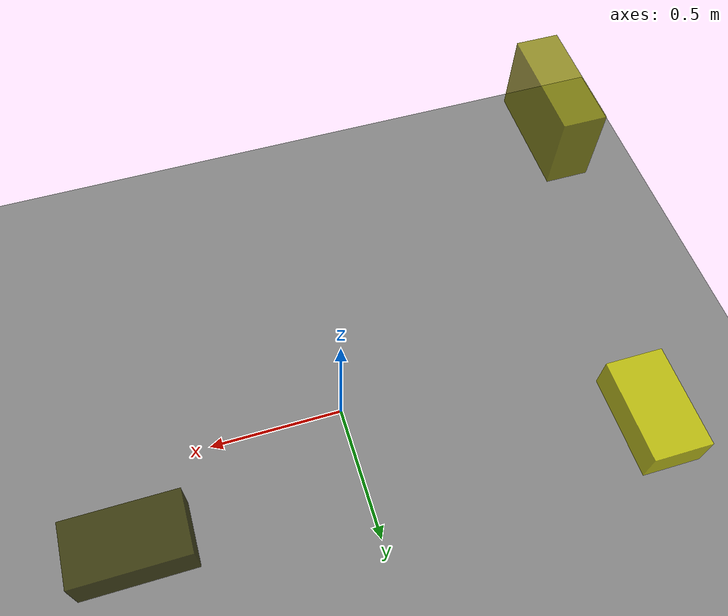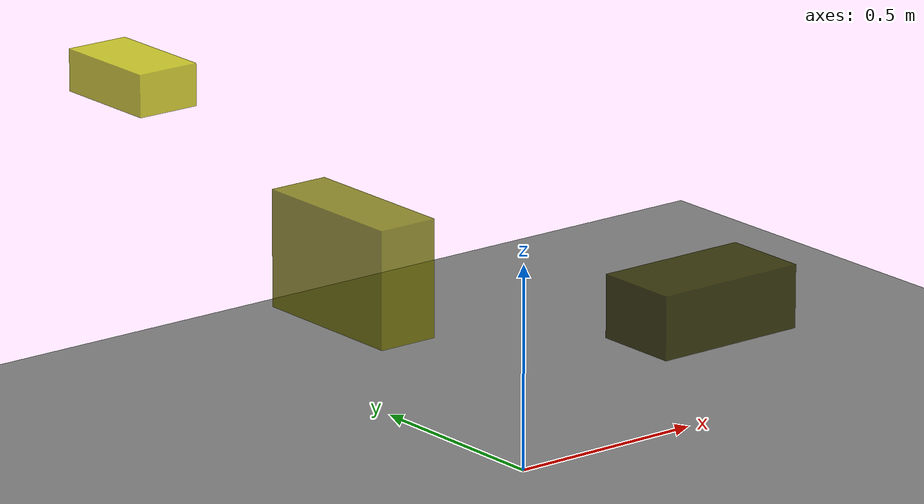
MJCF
<?xml version="1.0"?>
<mujoco model="obstacle_scene">
  <compiler angle="radian" coordinate="local"/>
  <option timestep="0.001" gravity="0 0 -9.81"/>

  <asset>
    <material name="obstacle_mat" rgba="0.8 0.8 0.0 0.8"/>
    <material name="ground_mat" rgba="0.5 0.5 0.5 1"/>
  </asset>

  <worldbody>
    <!-- Ground plane -->
    <geom name="ground" type="plane" size="3 3 0.1" material="ground_mat"/>

    <!-- Obstacles -->
    <body name="obstacle_0" pos="0.814754 0.326675 0.163778">
      <geom name="obs_0" type="box" size="0.203577 0.112466 0.080630" rgba="0.2 0.2 0.0 0.8"/>
    </body>
    <body name="obstacle_1" pos="-0.894750 -0.518579 0.812171">
      <geom name="obs_1" type="box" size="0.071302 0.192932 0.133525" rgba="0.5 0.5 0.0 0.8"/>
    </body>
    <body name="obstacle_2" pos="-0.651672 0.617810 0.924670">
      <geom name="obs_2" type="box" size="0.078752 0.138147 0.050687" rgba="0.8 0.8 0.0 0.8"/>
    </body>
  </worldbody>
</mujoco>
